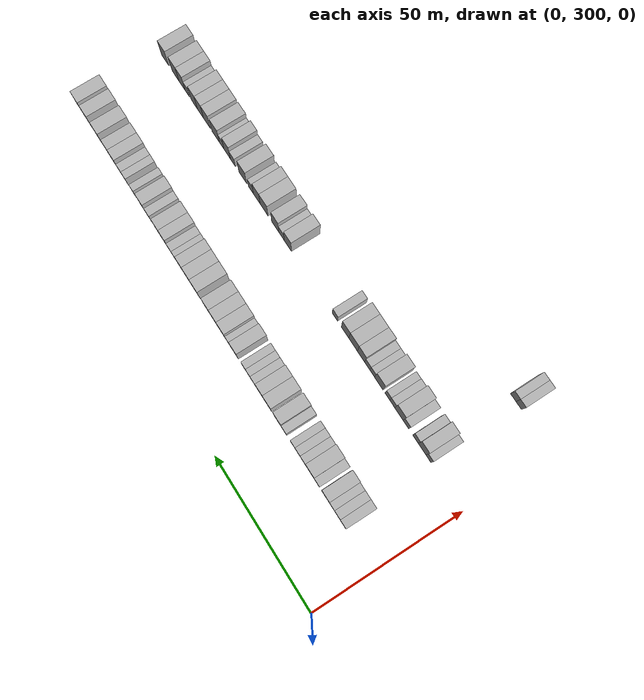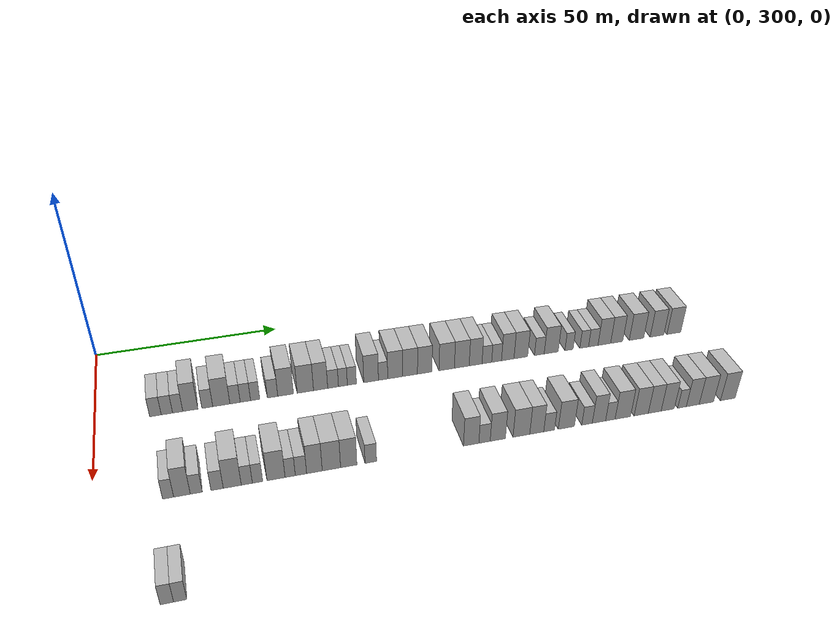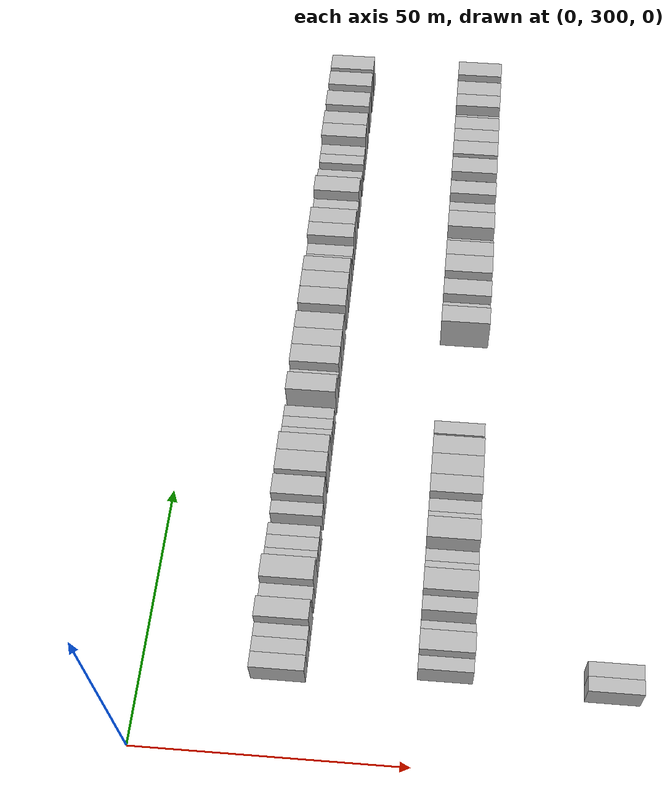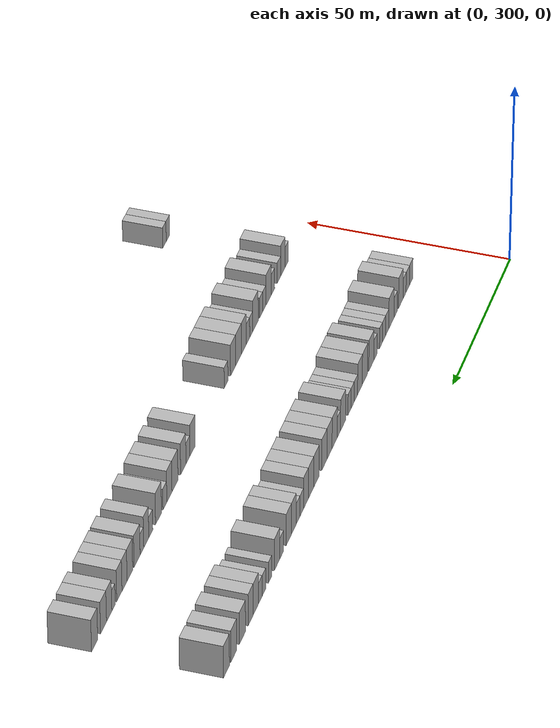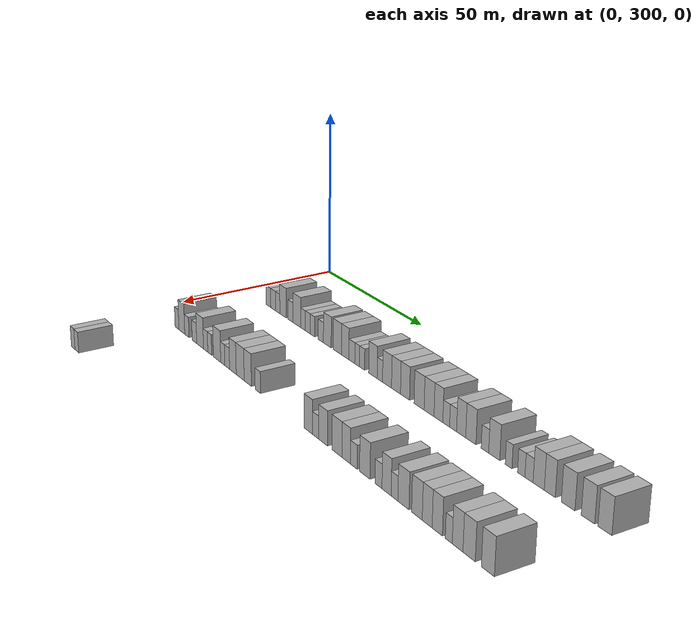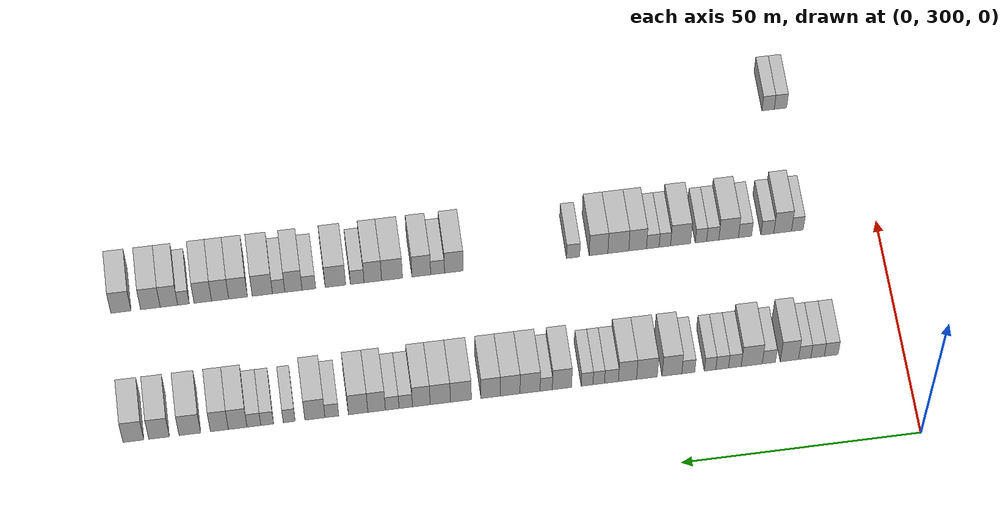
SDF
<sdf version="1.6">
 <world name="default">
  <model name="building_188">
   <static>1</static>
   <pose>25.0000 315.2118 0 0.000000 0.000000 0.000000</pose>
   <link name="link">
    <pose>0 0 3.00 0 0 0</pose>
    <collision name="collision"><geometry><box><size>10.0000 2.9046 6.0000</size></box></geometry></collision>
    <visual name="visual">
     <cast_shadows>0</cast_shadows>
     <geometry><box><size>10.0000 2.9046 6.0000</size></box></geometry>
     <material>
      <script>
       <uri>model://HANNAS_wall/materials/scripts</uri>
       <uri>model://HANNAS_wall/materials/textures</uri>
       <name>vrc/HANNAS_wall</name>
      </script>
     </material>
    </visual>
   </link>
  </model>
  <model name="building_189">
   <static>1</static>
   <pose>25.0000 318.0965 0 0.000000 0.000000 0.000000</pose>
   <link name="link">
    <pose>0 0 3.00 0 0 0</pose>
    <collision name="collision"><geometry><box><size>10.0000 2.8647 6.0000</size></box></geometry></collision>
    <visual name="visual">
     <cast_shadows>0</cast_shadows>
     <geometry><box><size>10.0000 2.8647 6.0000</size></box></geometry>
     <material>
      <script>
       <uri>model://HANNAS_wall/materials/scripts</uri>
       <uri>model://HANNAS_wall/materials/textures</uri>
       <name>vrc/HANNAS_wall</name>
      </script>
     </material>
    </visual>
   </link>
  </model>
  <model name="building_190">
   <static>1</static>
   <pose>25.0000 320.8268 0 0.000000 0.000000 0.000000</pose>
   <link name="link">
    <pose>0 0 3.00 0 0 0</pose>
    <collision name="collision"><geometry><box><size>10.0000 2.5958 6.0000</size></box></geometry></collision>
    <visual name="visual">
     <cast_shadows>0</cast_shadows>
     <geometry><box><size>10.0000 2.5958 6.0000</size></box></geometry>
     <material>
      <script>
       <uri>model://HANNAS_wall/materials/scripts</uri>
       <uri>model://HANNAS_wall/materials/textures</uri>
       <name>vrc/HANNAS_wall</name>
      </script>
     </material>
    </visual>
   </link>
  </model>
  <model name="building_191">
   <static>1</static>
   <pose>25.0000 324.0450 0 0.000000 0.000000 0.000000</pose>
   <link name="link">
    <pose>0 0 4.50 0 0 0</pose>
    <collision name="collision"><geometry><box><size>10.0000 3.8407 9.0000</size></box></geometry></collision>
    <visual name="visual">
     <cast_shadows>0</cast_shadows>
     <geometry><box><size>10.0000 3.8407 9.0000</size></box></geometry>
     <material>
      <script>
       <uri>model://HANNAS_wall/materials/scripts</uri>
       <uri>model://HANNAS_wall/materials/textures</uri>
       <name>vrc/HANNAS_wall</name>
      </script>
     </material>
    </visual>
   </link>
  </model>
  <model name="building_192">
   <static>1</static>
   <pose>25.0000 328.3671 0 0.000000 0.000000 0.000000</pose>
   <link name="link">
    <pose>0 0 3.00 0 0 0</pose>
    <collision name="collision"><geometry><box><size>10.0000 2.8036 6.0000</size></box></geometry></collision>
    <visual name="visual">
     <cast_shadows>0</cast_shadows>
     <geometry><box><size>10.0000 2.8036 6.0000</size></box></geometry>
     <material>
      <script>
       <uri>model://HANNAS_wall/materials/scripts</uri>
       <uri>model://HANNAS_wall/materials/textures</uri>
       <name>vrc/HANNAS_wall</name>
      </script>
     </material>
    </visual>
   </link>
  </model>
  <model name="building_193">
   <static>1</static>
   <pose>25.0000 331.9793 0 0.000000 0.000000 0.000000</pose>
   <link name="link">
    <pose>0 0 4.50 0 0 0</pose>
    <collision name="collision"><geometry><box><size>10.0000 4.4208 9.0000</size></box></geometry></collision>
    <visual name="visual">
     <cast_shadows>0</cast_shadows>
     <geometry><box><size>10.0000 4.4208 9.0000</size></box></geometry>
     <material>
      <script>
       <uri>model://HANNAS_wall/materials/scripts</uri>
       <uri>model://HANNAS_wall/materials/textures</uri>
       <name>vrc/HANNAS_wall</name>
      </script>
     </material>
    </visual>
   </link>
  </model>
  <model name="building_194">
   <static>1</static>
   <pose>25.0000 335.5265 0 0.000000 0.000000 0.000000</pose>
   <link name="link">
    <pose>0 0 3.00 0 0 0</pose>
    <collision name="collision"><geometry><box><size>10.0000 2.6736 6.0000</size></box></geometry></collision>
    <visual name="visual">
     <cast_shadows>0</cast_shadows>
     <geometry><box><size>10.0000 2.6736 6.0000</size></box></geometry>
     <material>
      <script>
       <uri>model://HANNAS_wall/materials/scripts</uri>
       <uri>model://HANNAS_wall/materials/textures</uri>
       <name>vrc/HANNAS_wall</name>
      </script>
     </material>
    </visual>
   </link>
  </model>
  <model name="building_195">
   <static>1</static>
   <pose>25.0000 338.2078 0 0.000000 0.000000 0.000000</pose>
   <link name="link">
    <pose>0 0 3.00 0 0 0</pose>
    <collision name="collision"><geometry><box><size>10.0000 2.6889 6.0000</size></box></geometry></collision>
    <visual name="visual">
     <cast_shadows>0</cast_shadows>
     <geometry><box><size>10.0000 2.6889 6.0000</size></box></geometry>
     <material>
      <script>
       <uri>model://HANNAS_wall/materials/scripts</uri>
       <uri>model://HANNAS_wall/materials/textures</uri>
       <name>vrc/HANNAS_wall</name>
      </script>
     </material>
    </visual>
   </link>
  </model>
  <model name="building_196">
   <static>1</static>
   <pose>25.0000 340.7536 0 0.000000 0.000000 0.000000</pose>
   <link name="link">
    <pose>0 0 3.00 0 0 0</pose>
    <collision name="collision"><geometry><box><size>10.0000 2.4028 6.0000</size></box></geometry></collision>
    <visual name="visual">
     <cast_shadows>0</cast_shadows>
     <geometry><box><size>10.0000 2.4028 6.0000</size></box></geometry>
     <material>
      <script>
       <uri>model://HANNAS_wall/materials/scripts</uri>
       <uri>model://HANNAS_wall/materials/textures</uri>
       <name>vrc/HANNAS_wall</name>
      </script>
     </material>
    </visual>
   </link>
  </model>
  <model name="building_197">
   <static>1</static>
   <pose>25.0000 345.3238 0 0.000000 0.000000 0.000000</pose>
   <link name="link">
    <pose>0 0 3.00 0 0 0</pose>
    <collision name="collision"><geometry><box><size>10.0000 2.7376 6.0000</size></box></geometry></collision>
    <visual name="visual">
     <cast_shadows>0</cast_shadows>
     <geometry><box><size>10.0000 2.7376 6.0000</size></box></geometry>
     <material>
      <script>
       <uri>model://HANNAS_wall/materials/scripts</uri>
       <uri>model://HANNAS_wall/materials/textures</uri>
       <name>vrc/HANNAS_wall</name>
      </script>
     </material>
    </visual>
   </link>
  </model>
  <model name="building_198">
   <static>1</static>
   <pose>25.0000 348.7687 0 0.000000 0.000000 0.000000</pose>
   <link name="link">
    <pose>0 0 4.50 0 0 0</pose>
    <collision name="collision"><geometry><box><size>10.0000 4.1522 9.0000</size></box></geometry></collision>
    <visual name="visual">
     <cast_shadows>0</cast_shadows>
     <geometry><box><size>10.0000 4.1522 9.0000</size></box></geometry>
     <material>
      <script>
       <uri>model://HANNAS_wall/materials/scripts</uri>
       <uri>model://HANNAS_wall/materials/textures</uri>
       <name>vrc/HANNAS_wall</name>
      </script>
     </material>
    </visual>
   </link>
  </model>
  <model name="building_199">
   <static>1</static>
   <pose>25.0000 354.0208 0 0.000000 0.000000 0.000000</pose>
   <link name="link">
    <pose>0 0 4.50 0 0 0</pose>
    <collision name="collision"><geometry><box><size>10.0000 4.3520 9.0000</size></box></geometry></collision>
    <visual name="visual">
     <cast_shadows>0</cast_shadows>
     <geometry><box><size>10.0000 4.3520 9.0000</size></box></geometry>
     <material>
      <script>
       <uri>model://HANNAS_wall/materials/scripts</uri>
       <uri>model://HANNAS_wall/materials/textures</uri>
       <name>vrc/HANNAS_wall</name>
      </script>
     </material>
    </visual>
   </link>
  </model>
  <model name="building_200">
   <static>1</static>
   <pose>25.0000 358.1011 0 0.000000 0.000000 0.000000</pose>
   <link name="link">
    <pose>0 0 4.50 0 0 0</pose>
    <collision name="collision"><geometry><box><size>10.0000 3.8087 9.0000</size></box></geometry></collision>
    <visual name="visual">
     <cast_shadows>0</cast_shadows>
     <geometry><box><size>10.0000 3.8087 9.0000</size></box></geometry>
     <material>
      <script>
       <uri>model://HANNAS_wall/materials/scripts</uri>
       <uri>model://HANNAS_wall/materials/textures</uri>
       <name>vrc/HANNAS_wall</name>
      </script>
     </material>
    </visual>
   </link>
  </model>
  <model name="building_201">
   <static>1</static>
   <pose>25.0000 361.4615 0 0.000000 0.000000 0.000000</pose>
   <link name="link">
    <pose>0 0 3.00 0 0 0</pose>
    <collision name="collision"><geometry><box><size>10.0000 2.9121 6.0000</size></box></geometry></collision>
    <visual name="visual">
     <cast_shadows>0</cast_shadows>
     <geometry><box><size>10.0000 2.9121 6.0000</size></box></geometry>
     <material>
      <script>
       <uri>model://HANNAS_wall/materials/scripts</uri>
       <uri>model://HANNAS_wall/materials/textures</uri>
       <name>vrc/HANNAS_wall</name>
      </script>
     </material>
    </visual>
   </link>
  </model>
  <model name="building_202">
   <static>1</static>
   <pose>25.0000 364.1194 0 0.000000 0.000000 0.000000</pose>
   <link name="link">
    <pose>0 0 3.00 0 0 0</pose>
    <collision name="collision"><geometry><box><size>10.0000 2.4037 6.0000</size></box></geometry></collision>
    <visual name="visual">
     <cast_shadows>0</cast_shadows>
     <geometry><box><size>10.0000 2.4037 6.0000</size></box></geometry>
     <material>
      <script>
       <uri>model://HANNAS_wall/materials/scripts</uri>
       <uri>model://HANNAS_wall/materials/textures</uri>
       <name>vrc/HANNAS_wall</name>
      </script>
     </material>
    </visual>
   </link>
  </model>
  <model name="building_203">
   <static>1</static>
   <pose>25.0000 366.5603 0 0.000000 0.000000 0.000000</pose>
   <link name="link">
    <pose>0 0 3.00 0 0 0</pose>
    <collision name="collision"><geometry><box><size>10.0000 2.4780 6.0000</size></box></geometry></collision>
    <visual name="visual">
     <cast_shadows>0</cast_shadows>
     <geometry><box><size>10.0000 2.4780 6.0000</size></box></geometry>
     <material>
      <script>
       <uri>model://HANNAS_wall/materials/scripts</uri>
       <uri>model://HANNAS_wall/materials/textures</uri>
       <name>vrc/HANNAS_wall</name>
      </script>
     </material>
    </visual>
   </link>
  </model>
  <model name="building_204">
   <static>1</static>
   <pose>25.0000 371.8171 0 0.000000 0.000000 0.000000</pose>
   <link name="link">
    <pose>0 0 4.50 0 0 0</pose>
    <collision name="collision"><geometry><box><size>10.0000 4.0356 9.0000</size></box></geometry></collision>
    <visual name="visual">
     <cast_shadows>0</cast_shadows>
     <geometry><box><size>10.0000 4.0356 9.0000</size></box></geometry>
     <material>
      <script>
       <uri>model://HANNAS_wall/materials/scripts</uri>
       <uri>model://HANNAS_wall/materials/textures</uri>
       <name>vrc/HANNAS_wall</name>
      </script>
     </material>
    </visual>
   </link>
  </model>
  <model name="building_205">
   <static>1</static>
   <pose>25.0000 375.1097 0 0.000000 0.000000 0.000000</pose>
   <link name="link">
    <pose>0 0 3.00 0 0 0</pose>
    <collision name="collision"><geometry><box><size>10.0000 2.5495 6.0000</size></box></geometry></collision>
    <visual name="visual">
     <cast_shadows>0</cast_shadows>
     <geometry><box><size>10.0000 2.5495 6.0000</size></box></geometry>
     <material>
      <script>
       <uri>model://HANNAS_wall/materials/scripts</uri>
       <uri>model://HANNAS_wall/materials/textures</uri>
       <name>vrc/HANNAS_wall</name>
      </script>
     </material>
    </visual>
   </link>
  </model>
  <model name="building_206">
   <static>1</static>
   <pose>25.0000 378.4818 0 0.000000 0.000000 0.000000</pose>
   <link name="link">
    <pose>0 0 4.50 0 0 0</pose>
    <collision name="collision"><geometry><box><size>10.0000 4.1947 9.0000</size></box></geometry></collision>
    <visual name="visual">
     <cast_shadows>0</cast_shadows>
     <geometry><box><size>10.0000 4.1947 9.0000</size></box></geometry>
     <material>
      <script>
       <uri>model://HANNAS_wall/materials/scripts</uri>
       <uri>model://HANNAS_wall/materials/textures</uri>
       <name>vrc/HANNAS_wall</name>
      </script>
     </material>
    </visual>
   </link>
  </model>
  <model name="building_207">
   <static>1</static>
   <pose>25.0000 382.6300 0 0.000000 0.000000 0.000000</pose>
   <link name="link">
    <pose>0 0 4.50 0 0 0</pose>
    <collision name="collision"><geometry><box><size>10.0000 4.1016 9.0000</size></box></geometry></collision>
    <visual name="visual">
     <cast_shadows>0</cast_shadows>
     <geometry><box><size>10.0000 4.1016 9.0000</size></box></geometry>
     <material>
      <script>
       <uri>model://HANNAS_wall/materials/scripts</uri>
       <uri>model://HANNAS_wall/materials/textures</uri>
       <name>vrc/HANNAS_wall</name>
      </script>
     </material>
    </visual>
   </link>
  </model>
  <model name="building_208">
   <static>1</static>
   <pose>25.0000 386.7074 0 0.000000 0.000000 0.000000</pose>
   <link name="link">
    <pose>0 0 4.50 0 0 0</pose>
    <collision name="collision"><geometry><box><size>10.0000 4.0534 9.0000</size></box></geometry></collision>
    <visual name="visual">
     <cast_shadows>0</cast_shadows>
     <geometry><box><size>10.0000 4.0534 9.0000</size></box></geometry>
     <material>
      <script>
       <uri>model://HANNAS_wall/materials/scripts</uri>
       <uri>model://HANNAS_wall/materials/textures</uri>
       <name>vrc/HANNAS_wall</name>
      </script>
     </material>
    </visual>
   </link>
  </model>
  <model name="building_209">
   <static>1</static>
   <pose>25.0000 392.9224 0 0.000000 0.000000 0.000000</pose>
   <link name="link">
    <pose>0 0 4.50 0 0 0</pose>
    <collision name="collision"><geometry><box><size>10.0000 4.3766 9.0000</size></box></geometry></collision>
    <visual name="visual">
     <cast_shadows>0</cast_shadows>
     <geometry><box><size>10.0000 4.3766 9.0000</size></box></geometry>
     <material>
      <script>
       <uri>model://HANNAS_wall/materials/scripts</uri>
       <uri>model://HANNAS_wall/materials/textures</uri>
       <name>vrc/HANNAS_wall</name>
      </script>
     </material>
    </visual>
   </link>
  </model>
  <model name="building_210">
   <static>1</static>
   <pose>25.0000 397.2203 0 0.000000 0.000000 0.000000</pose>
   <link name="link">
    <pose>0 0 4.50 0 0 0</pose>
    <collision name="collision"><geometry><box><size>10.0000 4.2191 9.0000</size></box></geometry></collision>
    <visual name="visual">
     <cast_shadows>0</cast_shadows>
     <geometry><box><size>10.0000 4.2191 9.0000</size></box></geometry>
     <material>
      <script>
       <uri>model://HANNAS_wall/materials/scripts</uri>
       <uri>model://HANNAS_wall/materials/textures</uri>
       <name>vrc/HANNAS_wall</name>
      </script>
     </material>
    </visual>
   </link>
  </model>
  <model name="building_211">
   <static>1</static>
   <pose>25.0000 401.1752 0 0.000000 0.000000 0.000000</pose>
   <link name="link">
    <pose>0 0 4.50 0 0 0</pose>
    <collision name="collision"><geometry><box><size>10.0000 3.6907 9.0000</size></box></geometry></collision>
    <visual name="visual">
     <cast_shadows>0</cast_shadows>
     <geometry><box><size>10.0000 3.6907 9.0000</size></box></geometry>
     <material>
      <script>
       <uri>model://HANNAS_wall/materials/scripts</uri>
       <uri>model://HANNAS_wall/materials/textures</uri>
       <name>vrc/HANNAS_wall</name>
      </script>
     </material>
    </visual>
   </link>
  </model>
  <model name="building_212">
   <static>1</static>
   <pose>25.0000 404.4151 0 0.000000 0.000000 0.000000</pose>
   <link name="link">
    <pose>0 0 3.00 0 0 0</pose>
    <collision name="collision"><geometry><box><size>10.0000 2.7891 6.0000</size></box></geometry></collision>
    <visual name="visual">
     <cast_shadows>0</cast_shadows>
     <geometry><box><size>10.0000 2.7891 6.0000</size></box></geometry>
     <material>
      <script>
       <uri>model://HANNAS_wall/materials/scripts</uri>
       <uri>model://HANNAS_wall/materials/textures</uri>
       <name>vrc/HANNAS_wall</name>
      </script>
     </material>
    </visual>
   </link>
  </model>
  <model name="building_213">
   <static>1</static>
   <pose>25.0000 407.2330 0 0.000000 0.000000 0.000000</pose>
   <link name="link">
    <pose>0 0 3.00 0 0 0</pose>
    <collision name="collision"><geometry><box><size>10.0000 2.8468 6.0000</size></box></geometry></collision>
    <visual name="visual">
     <cast_shadows>0</cast_shadows>
     <geometry><box><size>10.0000 2.8468 6.0000</size></box></geometry>
     <material>
      <script>
       <uri>model://HANNAS_wall/materials/scripts</uri>
       <uri>model://HANNAS_wall/materials/textures</uri>
       <name>vrc/HANNAS_wall</name>
      </script>
     </material>
    </visual>
   </link>
  </model>
  <model name="building_214">
   <static>1</static>
   <pose>25.0000 410.4805 0 0.000000 0.000000 0.000000</pose>
   <link name="link">
    <pose>0 0 4.50 0 0 0</pose>
    <collision name="collision"><geometry><box><size>10.0000 3.6481 9.0000</size></box></geometry></collision>
    <visual name="visual">
     <cast_shadows>0</cast_shadows>
     <geometry><box><size>10.0000 3.6481 9.0000</size></box></geometry>
     <material>
      <script>
       <uri>model://HANNAS_wall/materials/scripts</uri>
       <uri>model://HANNAS_wall/materials/textures</uri>
       <name>vrc/HANNAS_wall</name>
      </script>
     </material>
    </visual>
   </link>
  </model>
  <model name="building_215">
   <static>1</static>
   <pose>25.0000 414.3161 0 0.000000 0.000000 0.000000</pose>
   <link name="link">
    <pose>0 0 4.50 0 0 0</pose>
    <collision name="collision"><geometry><box><size>10.0000 4.0232 9.0000</size></box></geometry></collision>
    <visual name="visual">
     <cast_shadows>0</cast_shadows>
     <geometry><box><size>10.0000 4.0232 9.0000</size></box></geometry>
     <material>
      <script>
       <uri>model://HANNAS_wall/materials/scripts</uri>
       <uri>model://HANNAS_wall/materials/textures</uri>
       <name>vrc/HANNAS_wall</name>
      </script>
     </material>
    </visual>
   </link>
  </model>
  <model name="building_216">
   <static>1</static>
   <pose>25.0000 419.7627 0 0.000000 0.000000 0.000000</pose>
   <link name="link">
    <pose>0 0 3.00 0 0 0</pose>
    <collision name="collision"><geometry><box><size>10.0000 2.8699 6.0000</size></box></geometry></collision>
    <visual name="visual">
     <cast_shadows>0</cast_shadows>
     <geometry><box><size>10.0000 2.8699 6.0000</size></box></geometry>
     <material>
      <script>
       <uri>model://HANNAS_wall/materials/scripts</uri>
       <uri>model://HANNAS_wall/materials/textures</uri>
       <name>vrc/HANNAS_wall</name>
      </script>
     </material>
    </visual>
   </link>
  </model>
  <model name="building_217">
   <static>1</static>
   <pose>25.0000 423.2850 0 0.000000 0.000000 0.000000</pose>
   <link name="link">
    <pose>0 0 4.50 0 0 0</pose>
    <collision name="collision"><geometry><box><size>10.0000 4.1748 9.0000</size></box></geometry></collision>
    <visual name="visual">
     <cast_shadows>0</cast_shadows>
     <geometry><box><size>10.0000 4.1748 9.0000</size></box></geometry>
     <material>
      <script>
       <uri>model://HANNAS_wall/materials/scripts</uri>
       <uri>model://HANNAS_wall/materials/textures</uri>
       <name>vrc/HANNAS_wall</name>
      </script>
     </material>
    </visual>
   </link>
  </model>
  <model name="building_218">
   <static>1</static>
   <pose>25.0000 428.6071 0 0.000000 0.000000 0.000000</pose>
   <link name="link">
    <pose>0 0 3.00 0 0 0</pose>
    <collision name="collision"><geometry><box><size>10.0000 2.4693 6.0000</size></box></geometry></collision>
    <visual name="visual">
     <cast_shadows>0</cast_shadows>
     <geometry><box><size>10.0000 2.4693 6.0000</size></box></geometry>
     <material>
      <script>
       <uri>model://HANNAS_wall/materials/scripts</uri>
       <uri>model://HANNAS_wall/materials/textures</uri>
       <name>vrc/HANNAS_wall</name>
      </script>
     </material>
    </visual>
   </link>
  </model>
  <model name="building_219">
   <static>1</static>
   <pose>25.0000 433.1612 0 0.000000 0.000000 0.000000</pose>
   <link name="link">
    <pose>0 0 3.00 0 0 0</pose>
    <collision name="collision"><geometry><box><size>10.0000 2.6389 6.0000</size></box></geometry></collision>
    <visual name="visual">
     <cast_shadows>0</cast_shadows>
     <geometry><box><size>10.0000 2.6389 6.0000</size></box></geometry>
     <material>
      <script>
       <uri>model://HANNAS_wall/materials/scripts</uri>
       <uri>model://HANNAS_wall/materials/textures</uri>
       <name>vrc/HANNAS_wall</name>
      </script>
     </material>
    </visual>
   </link>
  </model>
  <model name="building_220">
   <static>1</static>
   <pose>25.0000 435.9116 0 0.000000 0.000000 0.000000</pose>
   <link name="link">
    <pose>0 0 3.00 0 0 0</pose>
    <collision name="collision"><geometry><box><size>10.0000 2.8618 6.0000</size></box></geometry></collision>
    <visual name="visual">
     <cast_shadows>0</cast_shadows>
     <geometry><box><size>10.0000 2.8618 6.0000</size></box></geometry>
     <material>
      <script>
       <uri>model://HANNAS_wall/materials/scripts</uri>
       <uri>model://HANNAS_wall/materials/textures</uri>
       <name>vrc/HANNAS_wall</name>
      </script>
     </material>
    </visual>
   </link>
  </model>
  <model name="building_221">
   <static>1</static>
   <pose>25.0000 439.2689 0 0.000000 0.000000 0.000000</pose>
   <link name="link">
    <pose>0 0 4.50 0 0 0</pose>
    <collision name="collision"><geometry><box><size>10.0000 3.8529 9.0000</size></box></geometry></collision>
    <visual name="visual">
     <cast_shadows>0</cast_shadows>
     <geometry><box><size>10.0000 3.8529 9.0000</size></box></geometry>
     <material>
      <script>
       <uri>model://HANNAS_wall/materials/scripts</uri>
       <uri>model://HANNAS_wall/materials/textures</uri>
       <name>vrc/HANNAS_wall</name>
      </script>
     </material>
    </visual>
   </link>
  </model>
  <model name="building_222">
   <static>1</static>
   <pose>25.0000 443.0539 0 0.000000 0.000000 0.000000</pose>
   <link name="link">
    <pose>0 0 4.50 0 0 0</pose>
    <collision name="collision"><geometry><box><size>10.0000 3.7172 9.0000</size></box></geometry></collision>
    <visual name="visual">
     <cast_shadows>0</cast_shadows>
     <geometry><box><size>10.0000 3.7172 9.0000</size></box></geometry>
     <material>
      <script>
       <uri>model://HANNAS_wall/materials/scripts</uri>
       <uri>model://HANNAS_wall/materials/textures</uri>
       <name>vrc/HANNAS_wall</name>
      </script>
     </material>
    </visual>
   </link>
  </model>
  <model name="building_223">
   <static>1</static>
   <pose>25.0000 449.1481 0 0.000000 0.000000 0.000000</pose>
   <link name="link">
    <pose>0 0 4.50 0 0 0</pose>
    <collision name="collision"><geometry><box><size>10.0000 4.4712 9.0000</size></box></geometry></collision>
    <visual name="visual">
     <cast_shadows>0</cast_shadows>
     <geometry><box><size>10.0000 4.4712 9.0000</size></box></geometry>
     <material>
      <script>
       <uri>model://HANNAS_wall/materials/scripts</uri>
       <uri>model://HANNAS_wall/materials/textures</uri>
       <name>vrc/HANNAS_wall</name>
      </script>
     </material>
    </visual>
   </link>
  </model>
  <model name="building_224">
   <static>1</static>
   <pose>25.0000 455.5095 0 0.000000 0.000000 0.000000</pose>
   <link name="link">
    <pose>0 0 4.50 0 0 0</pose>
    <collision name="collision"><geometry><box><size>10.0000 4.2516 9.0000</size></box></geometry></collision>
    <visual name="visual">
     <cast_shadows>0</cast_shadows>
     <geometry><box><size>10.0000 4.2516 9.0000</size></box></geometry>
     <material>
      <script>
       <uri>model://HANNAS_wall/materials/scripts</uri>
       <uri>model://HANNAS_wall/materials/textures</uri>
       <name>vrc/HANNAS_wall</name>
      </script>
     </material>
    </visual>
   </link>
  </model>
  <model name="building_225">
   <static>1</static>
   <pose>25.0000 460.7885 0 0.000000 0.000000 0.000000</pose>
   <link name="link">
    <pose>0 0 4.50 0 0 0</pose>
    <collision name="collision"><geometry><box><size>10.0000 4.3063 9.0000</size></box></geometry></collision>
    <visual name="visual">
     <cast_shadows>0</cast_shadows>
     <geometry><box><size>10.0000 4.3063 9.0000</size></box></geometry>
     <material>
      <script>
       <uri>model://HANNAS_wall/materials/scripts</uri>
       <uri>model://HANNAS_wall/materials/textures</uri>
       <name>vrc/HANNAS_wall</name>
      </script>
     </material>
    </visual>
   </link>
  </model>
  <model name="building_430">
   <static>1</static>
   <pose>55.0000 317.0692 0 0.000000 0.000000 0.000000</pose>
   <link name="link">
    <pose>0 0 3.00 0 0 0</pose>
    <collision name="collision"><geometry><box><size>10.0000 2.5319 6.0000</size></box></geometry></collision>
    <visual name="visual">
     <cast_shadows>0</cast_shadows>
     <geometry><box><size>10.0000 2.5319 6.0000</size></box></geometry>
     <material>
      <script>
       <uri>model://HANNAS_wall/materials/scripts</uri>
       <uri>model://HANNAS_wall/materials/textures</uri>
       <name>vrc/HANNAS_wall</name>
      </script>
     </material>
    </visual>
   </link>
  </model>
  <model name="building_431">
   <static>1</static>
   <pose>55.0000 320.2353 0 0.000000 0.000000 0.000000</pose>
   <link name="link">
    <pose>0 0 4.50 0 0 0</pose>
    <collision name="collision"><geometry><box><size>10.0000 3.8003 9.0000</size></box></geometry></collision>
    <visual name="visual">
     <cast_shadows>0</cast_shadows>
     <geometry><box><size>10.0000 3.8003 9.0000</size></box></geometry>
     <material>
      <script>
       <uri>model://HANNAS_wall/materials/scripts</uri>
       <uri>model://HANNAS_wall/materials/textures</uri>
       <name>vrc/HANNAS_wall</name>
      </script>
     </material>
    </visual>
   </link>
  </model>
  <model name="building_432">
   <static>1</static>
   <pose>55.0000 323.5155 0 0.000000 0.000000 0.000000</pose>
   <link name="link">
    <pose>0 0 3.00 0 0 0</pose>
    <collision name="collision"><geometry><box><size>10.0000 2.7601 6.0000</size></box></geometry></collision>
    <visual name="visual">
     <cast_shadows>0</cast_shadows>
     <geometry><box><size>10.0000 2.7601 6.0000</size></box></geometry>
     <material>
      <script>
       <uri>model://HANNAS_wall/materials/scripts</uri>
       <uri>model://HANNAS_wall/materials/textures</uri>
       <name>vrc/HANNAS_wall</name>
      </script>
     </material>
    </visual>
   </link>
  </model>
  <model name="building_433">
   <static>1</static>
   <pose>55.0000 328.3239 0 0.000000 0.000000 0.000000</pose>
   <link name="link">
    <pose>0 0 3.00 0 0 0</pose>
    <collision name="collision"><geometry><box><size>10.0000 2.8568 6.0000</size></box></geometry></collision>
    <visual name="visual">
     <cast_shadows>0</cast_shadows>
     <geometry><box><size>10.0000 2.8568 6.0000</size></box></geometry>
     <material>
      <script>
       <uri>model://HANNAS_wall/materials/scripts</uri>
       <uri>model://HANNAS_wall/materials/textures</uri>
       <name>vrc/HANNAS_wall</name>
      </script>
     </material>
    </visual>
   </link>
  </model>
  <model name="building_434">
   <static>1</static>
   <pose>55.0000 331.8567 0 0.000000 0.000000 0.000000</pose>
   <link name="link">
    <pose>0 0 4.50 0 0 0</pose>
    <collision name="collision"><geometry><box><size>10.0000 4.2087 9.0000</size></box></geometry></collision>
    <visual name="visual">
     <cast_shadows>0</cast_shadows>
     <geometry><box><size>10.0000 4.2087 9.0000</size></box></geometry>
     <material>
      <script>
       <uri>model://HANNAS_wall/materials/scripts</uri>
       <uri>model://HANNAS_wall/materials/textures</uri>
       <name>vrc/HANNAS_wall</name>
      </script>
     </material>
    </visual>
   </link>
  </model>
  <model name="building_435">
   <static>1</static>
   <pose>55.0000 335.2626 0 0.000000 0.000000 0.000000</pose>
   <link name="link">
    <pose>0 0 3.00 0 0 0</pose>
    <collision name="collision"><geometry><box><size>10.0000 2.6030 6.0000</size></box></geometry></collision>
    <visual name="visual">
     <cast_shadows>0</cast_shadows>
     <geometry><box><size>10.0000 2.6030 6.0000</size></box></geometry>
     <material>
      <script>
       <uri>model://HANNAS_wall/materials/scripts</uri>
       <uri>model://HANNAS_wall/materials/textures</uri>
       <name>vrc/HANNAS_wall</name>
      </script>
     </material>
    </visual>
   </link>
  </model>
  <model name="building_436">
   <static>1</static>
   <pose>55.0000 337.7875 0 0.000000 0.000000 0.000000</pose>
   <link name="link">
    <pose>0 0 3.00 0 0 0</pose>
    <collision name="collision"><geometry><box><size>10.0000 2.4469 6.0000</size></box></geometry></collision>
    <visual name="visual">
     <cast_shadows>0</cast_shadows>
     <geometry><box><size>10.0000 2.4469 6.0000</size></box></geometry>
     <material>
      <script>
       <uri>model://HANNAS_wall/materials/scripts</uri>
       <uri>model://HANNAS_wall/materials/textures</uri>
       <name>vrc/HANNAS_wall</name>
      </script>
     </material>
    </visual>
   </link>
  </model>
  <model name="building_437">
   <static>1</static>
   <pose>55.0000 342.1618 0 0.000000 0.000000 0.000000</pose>
   <link name="link">
    <pose>0 0 4.50 0 0 0</pose>
    <collision name="collision"><geometry><box><size>10.0000 4.3018 9.0000</size></box></geometry></collision>
    <visual name="visual">
     <cast_shadows>0</cast_shadows>
     <geometry><box><size>10.0000 4.3018 9.0000</size></box></geometry>
     <material>
      <script>
       <uri>model://HANNAS_wall/materials/scripts</uri>
       <uri>model://HANNAS_wall/materials/textures</uri>
       <name>vrc/HANNAS_wall</name>
      </script>
     </material>
    </visual>
   </link>
  </model>
  <model name="building_438">
   <static>1</static>
   <pose>55.0000 345.5357 0 0.000000 0.000000 0.000000</pose>
   <link name="link">
    <pose>0 0 3.00 0 0 0</pose>
    <collision name="collision"><geometry><box><size>10.0000 2.4459 6.0000</size></box></geometry></collision>
    <visual name="visual">
     <cast_shadows>0</cast_shadows>
     <geometry><box><size>10.0000 2.4459 6.0000</size></box></geometry>
     <material>
      <script>
       <uri>model://HANNAS_wall/materials/scripts</uri>
       <uri>model://HANNAS_wall/materials/textures</uri>
       <name>vrc/HANNAS_wall</name>
      </script>
     </material>
    </visual>
   </link>
  </model>
  <model name="building_439">
   <static>1</static>
   <pose>55.0000 348.1180 0 0.000000 0.000000 0.000000</pose>
   <link name="link">
    <pose>0 0 3.00 0 0 0</pose>
    <collision name="collision"><geometry><box><size>10.0000 2.7188 6.0000</size></box></geometry></collision>
    <visual name="visual">
     <cast_shadows>0</cast_shadows>
     <geometry><box><size>10.0000 2.7188 6.0000</size></box></geometry>
     <material>
      <script>
       <uri>model://HANNAS_wall/materials/scripts</uri>
       <uri>model://HANNAS_wall/materials/textures</uri>
       <name>vrc/HANNAS_wall</name>
      </script>
     </material>
    </visual>
   </link>
  </model>
  <model name="building_440">
   <static>1</static>
   <pose>55.0000 351.3670 0 0.000000 0.000000 0.000000</pose>
   <link name="link">
    <pose>0 0 4.50 0 0 0</pose>
    <collision name="collision"><geometry><box><size>10.0000 3.7791 9.0000</size></box></geometry></collision>
    <visual name="visual">
     <cast_shadows>0</cast_shadows>
     <geometry><box><size>10.0000 3.7791 9.0000</size></box></geometry>
     <material>
      <script>
       <uri>model://HANNAS_wall/materials/scripts</uri>
       <uri>model://HANNAS_wall/materials/textures</uri>
       <name>vrc/HANNAS_wall</name>
      </script>
     </material>
    </visual>
   </link>
  </model>
  <model name="building_441">
   <static>1</static>
   <pose>55.0000 355.4889 0 0.000000 0.000000 0.000000</pose>
   <link name="link">
    <pose>0 0 4.50 0 0 0</pose>
    <collision name="collision"><geometry><box><size>10.0000 4.4647 9.0000</size></box></geometry></collision>
    <visual name="visual">
     <cast_shadows>0</cast_shadows>
     <geometry><box><size>10.0000 4.4647 9.0000</size></box></geometry>
     <material>
      <script>
       <uri>model://HANNAS_wall/materials/scripts</uri>
       <uri>model://HANNAS_wall/materials/textures</uri>
       <name>vrc/HANNAS_wall</name>
      </script>
     </material>
    </visual>
   </link>
  </model>
  <model name="building_442">
   <static>1</static>
   <pose>55.0000 359.7236 0 0.000000 0.000000 0.000000</pose>
   <link name="link">
    <pose>0 0 4.50 0 0 0</pose>
    <collision name="collision"><geometry><box><size>10.0000 4.0048 9.0000</size></box></geometry></collision>
    <visual name="visual">
     <cast_shadows>0</cast_shadows>
     <geometry><box><size>10.0000 4.0048 9.0000</size></box></geometry>
     <material>
      <script>
       <uri>model://HANNAS_wall/materials/scripts</uri>
       <uri>model://HANNAS_wall/materials/textures</uri>
       <name>vrc/HANNAS_wall</name>
      </script>
     </material>
    </visual>
   </link>
  </model>
  <model name="building_443">
   <static>1</static>
   <pose>55.0000 365.1496 0 0.000000 0.000000 0.000000</pose>
   <link name="link">
    <pose>0 0 3.00 0 0 0</pose>
    <collision name="collision"><geometry><box><size>10.0000 2.8471 6.0000</size></box></geometry></collision>
    <visual name="visual">
     <cast_shadows>0</cast_shadows>
     <geometry><box><size>10.0000 2.8471 6.0000</size></box></geometry>
     <material>
      <script>
       <uri>model://HANNAS_wall/materials/scripts</uri>
       <uri>model://HANNAS_wall/materials/textures</uri>
       <name>vrc/HANNAS_wall</name>
      </script>
     </material>
    </visual>
   </link>
  </model>
  <model name="building_444">
   <static>1</static>
   <pose>55.0000 390.5415 0 0.000000 0.000000 0.000000</pose>
   <link name="link">
    <pose>0 0 4.50 0 0 0</pose>
    <collision name="collision"><geometry><box><size>10.0000 3.9789 9.0000</size></box></geometry></collision>
    <visual name="visual">
     <cast_shadows>0</cast_shadows>
     <geometry><box><size>10.0000 3.9789 9.0000</size></box></geometry>
     <material>
      <script>
       <uri>model://HANNAS_wall/materials/scripts</uri>
       <uri>model://HANNAS_wall/materials/textures</uri>
       <name>vrc/HANNAS_wall</name>
      </script>
     </material>
    </visual>
   </link>
  </model>
  <model name="building_445">
   <static>1</static>
   <pose>55.0000 394.0068 0 0.000000 0.000000 0.000000</pose>
   <link name="link">
    <pose>0 0 3.00 0 0 0</pose>
    <collision name="collision"><geometry><box><size>10.0000 2.9517 6.0000</size></box></geometry></collision>
    <visual name="visual">
     <cast_shadows>0</cast_shadows>
     <geometry><box><size>10.0000 2.9517 6.0000</size></box></geometry>
     <material>
      <script>
       <uri>model://HANNAS_wall/materials/scripts</uri>
       <uri>model://HANNAS_wall/materials/textures</uri>
       <name>vrc/HANNAS_wall</name>
      </script>
     </material>
    </visual>
   </link>
  </model>
  <model name="building_446">
   <static>1</static>
   <pose>55.0000 397.4738 0 0.000000 0.000000 0.000000</pose>
   <link name="link">
    <pose>0 0 4.50 0 0 0</pose>
    <collision name="collision"><geometry><box><size>10.0000 3.9824 9.0000</size></box></geometry></collision>
    <visual name="visual">
     <cast_shadows>0</cast_shadows>
     <geometry><box><size>10.0000 3.9824 9.0000</size></box></geometry>
     <material>
      <script>
       <uri>model://HANNAS_wall/materials/scripts</uri>
       <uri>model://HANNAS_wall/materials/textures</uri>
       <name>vrc/HANNAS_wall</name>
      </script>
     </material>
    </visual>
   </link>
  </model>
  <model name="building_447">
   <static>1</static>
   <pose>55.0000 403.6775 0 0.000000 0.000000 0.000000</pose>
   <link name="link">
    <pose>0 0 4.50 0 0 0</pose>
    <collision name="collision"><geometry><box><size>10.0000 4.4249 9.0000</size></box></geometry></collision>
    <visual name="visual">
     <cast_shadows>0</cast_shadows>
     <geometry><box><size>10.0000 4.4249 9.0000</size></box></geometry>
     <material>
      <script>
       <uri>model://HANNAS_wall/materials/scripts</uri>
       <uri>model://HANNAS_wall/materials/textures</uri>
       <name>vrc/HANNAS_wall</name>
      </script>
     </material>
    </visual>
   </link>
  </model>
  <model name="building_448">
   <static>1</static>
   <pose>55.0000 407.7537 0 0.000000 0.000000 0.000000</pose>
   <link name="link">
    <pose>0 0 4.50 0 0 0</pose>
    <collision name="collision"><geometry><box><size>10.0000 3.7275 9.0000</size></box></geometry></collision>
    <visual name="visual">
     <cast_shadows>0</cast_shadows>
     <geometry><box><size>10.0000 3.7275 9.0000</size></box></geometry>
     <material>
      <script>
       <uri>model://HANNAS_wall/materials/scripts</uri>
       <uri>model://HANNAS_wall/materials/textures</uri>
       <name>vrc/HANNAS_wall</name>
      </script>
     </material>
    </visual>
   </link>
  </model>
  <model name="building_449">
   <static>1</static>
   <pose>55.0000 411.0597 0 0.000000 0.000000 0.000000</pose>
   <link name="link">
    <pose>0 0 3.00 0 0 0</pose>
    <collision name="collision"><geometry><box><size>10.0000 2.8845 6.0000</size></box></geometry></collision>
    <visual name="visual">
     <cast_shadows>0</cast_shadows>
     <geometry><box><size>10.0000 2.8845 6.0000</size></box></geometry>
     <material>
      <script>
       <uri>model://HANNAS_wall/materials/scripts</uri>
       <uri>model://HANNAS_wall/materials/textures</uri>
       <name>vrc/HANNAS_wall</name>
      </script>
     </material>
    </visual>
   </link>
  </model>
  <model name="building_450">
   <static>1</static>
   <pose>55.0000 415.6798 0 0.000000 0.000000 0.000000</pose>
   <link name="link">
    <pose>0 0 4.50 0 0 0</pose>
    <collision name="collision"><geometry><box><size>10.0000 4.3558 9.0000</size></box></geometry></collision>
    <visual name="visual">
     <cast_shadows>0</cast_shadows>
     <geometry><box><size>10.0000 4.3558 9.0000</size></box></geometry>
     <material>
      <script>
       <uri>model://HANNAS_wall/materials/scripts</uri>
       <uri>model://HANNAS_wall/materials/textures</uri>
       <name>vrc/HANNAS_wall</name>
      </script>
     </material>
    </visual>
   </link>
  </model>
  <model name="building_451">
   <static>1</static>
   <pose>55.0000 421.2942 0 0.000000 0.000000 0.000000</pose>
   <link name="link">
    <pose>0 0 3.00 0 0 0</pose>
    <collision name="collision"><geometry><box><size>10.0000 2.8730 6.0000</size></box></geometry></collision>
    <visual name="visual">
     <cast_shadows>0</cast_shadows>
     <geometry><box><size>10.0000 2.8730 6.0000</size></box></geometry>
     <material>
      <script>
       <uri>model://HANNAS_wall/materials/scripts</uri>
       <uri>model://HANNAS_wall/materials/textures</uri>
       <name>vrc/HANNAS_wall</name>
      </script>
     </material>
    </visual>
   </link>
  </model>
  <model name="building_452">
   <static>1</static>
   <pose>55.0000 424.5509 0 0.000000 0.000000 0.000000</pose>
   <link name="link">
    <pose>0 0 4.50 0 0 0</pose>
    <collision name="collision"><geometry><box><size>10.0000 3.6403 9.0000</size></box></geometry></collision>
    <visual name="visual">
     <cast_shadows>0</cast_shadows>
     <geometry><box><size>10.0000 3.6403 9.0000</size></box></geometry>
     <material>
      <script>
       <uri>model://HANNAS_wall/materials/scripts</uri>
       <uri>model://HANNAS_wall/materials/textures</uri>
       <name>vrc/HANNAS_wall</name>
      </script>
     </material>
    </visual>
   </link>
  </model>
  <model name="building_453">
   <static>1</static>
   <pose>55.0000 427.6779 0 0.000000 0.000000 0.000000</pose>
   <link name="link">
    <pose>0 0 3.00 0 0 0</pose>
    <collision name="collision"><geometry><box><size>10.0000 2.6138 6.0000</size></box></geometry></collision>
    <visual name="visual">
     <cast_shadows>0</cast_shadows>
     <geometry><box><size>10.0000 2.6138 6.0000</size></box></geometry>
     <material>
      <script>
       <uri>model://HANNAS_wall/materials/scripts</uri>
       <uri>model://HANNAS_wall/materials/textures</uri>
       <name>vrc/HANNAS_wall</name>
      </script>
     </material>
    </visual>
   </link>
  </model>
  <model name="building_454">
   <static>1</static>
   <pose>55.0000 431.1244 0 0.000000 0.000000 0.000000</pose>
   <link name="link">
    <pose>0 0 4.50 0 0 0</pose>
    <collision name="collision"><geometry><box><size>10.0000 4.2790 9.0000</size></box></geometry></collision>
    <visual name="visual">
     <cast_shadows>0</cast_shadows>
     <geometry><box><size>10.0000 4.2790 9.0000</size></box></geometry>
     <material>
      <script>
       <uri>model://HANNAS_wall/materials/scripts</uri>
       <uri>model://HANNAS_wall/materials/textures</uri>
       <name>vrc/HANNAS_wall</name>
      </script>
     </material>
    </visual>
   </link>
  </model>
  <model name="building_455">
   <static>1</static>
   <pose>55.0000 436.2414 0 0.000000 0.000000 0.000000</pose>
   <link name="link">
    <pose>0 0 4.50 0 0 0</pose>
    <collision name="collision"><geometry><box><size>10.0000 3.9550 9.0000</size></box></geometry></collision>
    <visual name="visual">
     <cast_shadows>0</cast_shadows>
     <geometry><box><size>10.0000 3.9550 9.0000</size></box></geometry>
     <material>
      <script>
       <uri>model://HANNAS_wall/materials/scripts</uri>
       <uri>model://HANNAS_wall/materials/textures</uri>
       <name>vrc/HANNAS_wall</name>
      </script>
     </material>
    </visual>
   </link>
  </model>
  <model name="building_456">
   <static>1</static>
   <pose>55.0000 440.0246 0 0.000000 0.000000 0.000000</pose>
   <link name="link">
    <pose>0 0 4.50 0 0 0</pose>
    <collision name="collision"><geometry><box><size>10.0000 3.6115 9.0000</size></box></geometry></collision>
    <visual name="visual">
     <cast_shadows>0</cast_shadows>
     <geometry><box><size>10.0000 3.6115 9.0000</size></box></geometry>
     <material>
      <script>
       <uri>model://HANNAS_wall/materials/scripts</uri>
       <uri>model://HANNAS_wall/materials/textures</uri>
       <name>vrc/HANNAS_wall</name>
      </script>
     </material>
    </visual>
   </link>
  </model>
  <model name="building_457">
   <static>1</static>
   <pose>55.0000 443.6802 0 0.000000 0.000000 0.000000</pose>
   <link name="link">
    <pose>0 0 4.50 0 0 0</pose>
    <collision name="collision"><geometry><box><size>10.0000 3.6997 9.0000</size></box></geometry></collision>
    <visual name="visual">
     <cast_shadows>0</cast_shadows>
     <geometry><box><size>10.0000 3.6997 9.0000</size></box></geometry>
     <material>
      <script>
       <uri>model://HANNAS_wall/materials/scripts</uri>
       <uri>model://HANNAS_wall/materials/textures</uri>
       <name>vrc/HANNAS_wall</name>
      </script>
     </material>
    </visual>
   </link>
  </model>
  <model name="building_458">
   <static>1</static>
   <pose>55.0000 447.7498 0 0.000000 0.000000 0.000000</pose>
   <link name="link">
    <pose>0 0 3.00 0 0 0</pose>
    <collision name="collision"><geometry><box><size>10.0000 2.4395 6.0000</size></box></geometry></collision>
    <visual name="visual">
     <cast_shadows>0</cast_shadows>
     <geometry><box><size>10.0000 2.4395 6.0000</size></box></geometry>
     <material>
      <script>
       <uri>model://HANNAS_wall/materials/scripts</uri>
       <uri>model://HANNAS_wall/materials/textures</uri>
       <name>vrc/HANNAS_wall</name>
      </script>
     </material>
    </visual>
   </link>
  </model>
  <model name="building_459">
   <static>1</static>
   <pose>55.0000 450.8087 0 0.000000 0.000000 0.000000</pose>
   <link name="link">
    <pose>0 0 4.50 0 0 0</pose>
    <collision name="collision"><geometry><box><size>10.0000 3.6784 9.0000</size></box></geometry></collision>
    <visual name="visual">
     <cast_shadows>0</cast_shadows>
     <geometry><box><size>10.0000 3.6784 9.0000</size></box></geometry>
     <material>
      <script>
       <uri>model://HANNAS_wall/materials/scripts</uri>
       <uri>model://HANNAS_wall/materials/textures</uri>
       <name>vrc/HANNAS_wall</name>
      </script>
     </material>
    </visual>
   </link>
  </model>
  <model name="building_460">
   <static>1</static>
   <pose>55.0000 454.7125 0 0.000000 0.000000 0.000000</pose>
   <link name="link">
    <pose>0 0 4.50 0 0 0</pose>
    <collision name="collision"><geometry><box><size>10.0000 4.1292 9.0000</size></box></geometry></collision>
    <visual name="visual">
     <cast_shadows>0</cast_shadows>
     <geometry><box><size>10.0000 4.1292 9.0000</size></box></geometry>
     <material>
      <script>
       <uri>model://HANNAS_wall/materials/scripts</uri>
       <uri>model://HANNAS_wall/materials/textures</uri>
       <name>vrc/HANNAS_wall</name>
      </script>
     </material>
    </visual>
   </link>
  </model>
  <model name="building_461">
   <static>1</static>
   <pose>55.0000 460.9014 0 0.000000 0.000000 0.000000</pose>
   <link name="link">
    <pose>0 0 4.50 0 0 0</pose>
    <collision name="collision"><geometry><box><size>10.0000 4.2485 9.0000</size></box></geometry></collision>
    <visual name="visual">
     <cast_shadows>0</cast_shadows>
     <geometry><box><size>10.0000 4.2485 9.0000</size></box></geometry>
     <material>
      <script>
       <uri>model://HANNAS_wall/materials/scripts</uri>
       <uri>model://HANNAS_wall/materials/textures</uri>
       <name>vrc/HANNAS_wall</name>
      </script>
     </material>
    </visual>
   </link>
  </model>
  <model name="building_660">
   <static>1</static>
   <pose>85.0000 315.4865 0 0.000000 0.000000 0.000000</pose>
   <link name="link">
    <pose>0 0 3.00 0 0 0</pose>
    <collision name="collision"><geometry><box><size>10.0000 2.7298 6.0000</size></box></geometry></collision>
    <visual name="visual">
     <cast_shadows>0</cast_shadows>
     <geometry><box><size>10.0000 2.7298 6.0000</size></box></geometry>
     <material>
      <script>
       <uri>model://HANNAS_wall/materials/scripts</uri>
       <uri>model://HANNAS_wall/materials/textures</uri>
       <name>vrc/HANNAS_wall</name>
      </script>
     </material>
    </visual>
   </link>
  </model>
  <model name="building_661">
   <static>1</static>
   <pose>85.0000 318.2012 0 0.000000 0.000000 0.000000</pose>
   <link name="link">
    <pose>0 0 3.00 0 0 0</pose>
    <collision name="collision"><geometry><box><size>10.0000 2.6996 6.0000</size></box></geometry></collision>
    <visual name="visual">
     <cast_shadows>0</cast_shadows>
     <geometry><box><size>10.0000 2.6996 6.0000</size></box></geometry>
     <material>
      <script>
       <uri>model://HANNAS_wall/materials/scripts</uri>
       <uri>model://HANNAS_wall/materials/textures</uri>
       <name>vrc/HANNAS_wall</name>
      </script>
     </material>
    </visual>
   </link>
  </model>
 </world>
</sdf>
